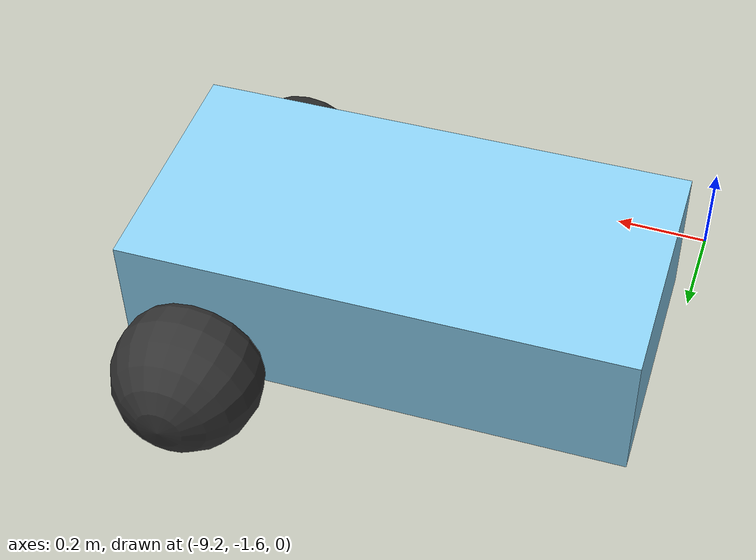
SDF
<?xml version="1.0" ?>
<sdf version="1.6">
 <model name='robot3'>
  <pose>-8.59932 -1.0576 0.201518 0 -0 0.021201</pose>
  <link name='base_link'>
    <pose>-0.0757135 -0 0.0875 0 -0 0</pose>
    <inertial>
      <mass>0.5</mass>
      <inertia>
        <ixx>0.01577</ixx>
        <ixy>0</ixy>
        <ixz>0</ixz>
        <iyy>0.20826</iyy>
        <iyz>0</iyz>
        <izz>0.24051</izz>
      </inertia>
      <pose>0 0 0 0 -0 0</pose>
    </inertial>
    <visual name='visual'>
      <geometry>
        <box>
          <size>1.00571 0.5 0.284363</size>
        </box>
      </geometry>
      <material>
        <ambient>0.54 0.81 0.94 1.0</ambient>
        <diffuse>0.54 0.81 0.94 1.0</diffuse>
        <specular>0.6 0.9 1.0 1.0</specular>
      </material>
    </visual>
    <collision name='collision'>
      <geometry>
        <box>
          <size>1.00571 0.5 0.284363</size>
        </box>
      </geometry>
      <max_contacts>10</max_contacts>
      <surface>
        <contact>
          <ode/>
        </contact>
        <bounce/>
        <friction>
          <torsional>
            <ode/>
          </torsional>
          <ode/>
        </friction>
      </surface>
    </collision>
    <self_collide>0</self_collide>
    <enable_wind>0</enable_wind>
    <kinematic>0</kinematic>
  </link>
  <link name='left_wheel'>
    <pose>0.277142 0.312514 -0.0125 -1.5707 0 0</pose>
    <inertial>
      <mass>1</mass>
      <inertia>
        <ixx>0.0729165</ixx>
        <ixy>0</ixy>
        <ixz>0</ixz>
        <iyy>0.0729165</iyy>
        <iyz>0</iyz>
        <izz>0.0625</izz>
      </inertia>
      <pose>0 0 0 0 -0 0</pose>
    </inertial>
    <visual name='visual'>
      <geometry>
        <sphere>
          <radius>0.15</radius>
        </sphere>
      </geometry>
      <material>
        <ambient>0.1 0.1 0.1 1.0</ambient>
        <diffuse>0.2 0.2 0.2 1.0</diffuse>
        <specular>0.3 0.3 0.3 1.0</specular>
      </material>
    </visual>
    <collision name='collision'>
      <geometry>
        <sphere>
          <radius>0.15</radius>
        </sphere>
      </geometry>
      <surface>
        <friction>
          <ode>
            <mu>1</mu>
            <mu2>1</mu2>
            <slip1>0</slip1>
            <slip2>0</slip2>
          </ode>
          <torsional>
            <ode/>
          </torsional>
        </friction>
        <contact>
          <ode>
            <soft_cfm>0</soft_cfm>
            <soft_erp>0.2</soft_erp>
            <kp>1e+13</kp>
            <kd>1</kd>
            <max_vel>0.01</max_vel>
            <min_depth>0.01</min_depth>
          </ode>
        </contact>
        <bounce/>
      </surface>
      <max_contacts>10</max_contacts>
    </collision>
    <self_collide>0</self_collide>
    <enable_wind>0</enable_wind>
    <kinematic>0</kinematic>
  </link>
  <link name='right_wheel'>
    <pose>0.277141 -0.312514 -0.0125 -1.5707 0 0</pose>
    <inertial>
      <mass>1</mass>
      <inertia>
        <ixx>0.0729165</ixx>
        <ixy>0</ixy>
        <ixz>0</ixz>
        <iyy>0.0729165</iyy>
        <iyz>0</iyz>
        <izz>0.0625</izz>
      </inertia>
      <pose>0 0 0 0 -0 0</pose>
    </inertial>
    <visual name='visual'>
      <geometry>
        <sphere>
          <radius>0.15</radius>
        </sphere>
      </geometry>
      <material>
        <ambient>0.1 0.1 0.1 1.0</ambient>
        <diffuse>0.2 0.2 0.2 1.0</diffuse>
        <specular>0.3 0.3 0.3 1.0</specular>
      </material>
    </visual>
    <collision name='collision'>
      <geometry>
        <sphere>
          <radius>0.15</radius>
        </sphere>
      </geometry>
      <surface>
        <friction>
          <ode>
            <mu>1</mu>
            <mu2>1</mu2>
            <slip1>0</slip1>
            <slip2>0</slip2>
          </ode>
          <torsional>
            <ode/>
          </torsional>
        </friction>
        <contact>
          <ode>
            <soft_cfm>0</soft_cfm>
            <soft_erp>0.2</soft_erp>
            <kp>1e+13</kp>
            <kd>1</kd>
            <max_vel>0.01</max_vel>
            <min_depth>0.01</min_depth>
          </ode>
        </contact>
        <bounce/>
      </surface>
      <max_contacts>10</max_contacts>
    </collision>
    <self_collide>0</self_collide>
    <enable_wind>0</enable_wind>
    <kinematic>0</kinematic>
  </link>
  <link name='caster'>
    <pose>-0.478569 -0 -0.0625 0 -0 0</pose>
    <inertial>
      <mass>0.5</mass>
      <inertia>
        <ixx>0.025</ixx>
        <ixy>0</ixy>
        <ixz>0</ixz>
        <iyy>0.025</iyy>
        <iyz>0</iyz>
        <izz>0.025</izz>
      </inertia>
      <pose>0 0 0 0 -0 0</pose>
    </inertial>
    <visual name='visual'>
      <geometry>
        <sphere>
          <radius>0.1</radius>
        </sphere>
      </geometry>
      <material>
        <ambient>0.1 0.1 0.1 1.0</ambient>
        <diffuse>0.2 0.2 0.2 1.0</diffuse>
        <specular>0.3 0.3 0.3 1.0</specular>
      </material>
    </visual>
    <collision name='collision'>
      <geometry>
        <sphere>
          <radius>0.1</radius>
        </sphere>
      </geometry>
      <max_contacts>10</max_contacts>
      <surface>
        <contact>
          <ode/>
        </contact>
        <bounce/>
        <friction>
          <torsional>
            <ode/>
          </torsional>
          <ode/>
        </friction>
      </surface>
    </collision>
    <self_collide>0</self_collide>
    <enable_wind>0</enable_wind>
    <kinematic>0</kinematic>
  </link>
  <joint name='left_wheel_joint' type='revolute'>
    <parent>base_link</parent>
    <child>left_wheel</child>
    <axis>
      <xyz>0 0 1</xyz>
      <limit>
        <lower>-1.79769e+308</lower>
        <upper>1.79769e+308</upper>
      </limit>
      <dynamics>
        <spring_reference>0</spring_reference>
        <spring_stiffness>0</spring_stiffness>
      </dynamics>
    </axis>
  </joint>
  <joint name='right_wheel_joint' type='revolute'>
    <parent>base_link</parent>
    <child>right_wheel</child>
    <axis>
      <xyz>0 0 1</xyz>
      <limit>
        <lower>-1.79769e+308</lower>
        <upper>1.79769e+308</upper>
      </limit>
      <dynamics>
        <spring_reference>0</spring_reference>
        <spring_stiffness>0</spring_stiffness>
      </dynamics>
    </axis>
  </joint>
  <joint name='caster_wheel' type='ball'>
    <parent>base_link</parent>
    <child>caster</child>
  </joint>
  <plugin name="gazebo_ros_diff_drive" filename="libgazebo_ros_diff_drive.so">
      <ros>
        <namespace>/robot3</namespace> <!-- Adicionado namespace único -->
        <remapping>odom:=odom</remapping>
      </ros>
      <publishOdomTf>1</publishOdomTf>
      <commandTopic>cmd_vel</commandTopic>
      <odometryTopic>odom</odometryTopic>
      <odometrySource>WORLD</odometrySource>
      <publish_odom>1</publish_odom>
      <robotBaseFrame>base_link</robotBaseFrame>
      <left_joint>left_wheel_joint</left_joint>
      <right_joint>right_wheel_joint</right_joint>
    </plugin>
</model>
</sdf>
